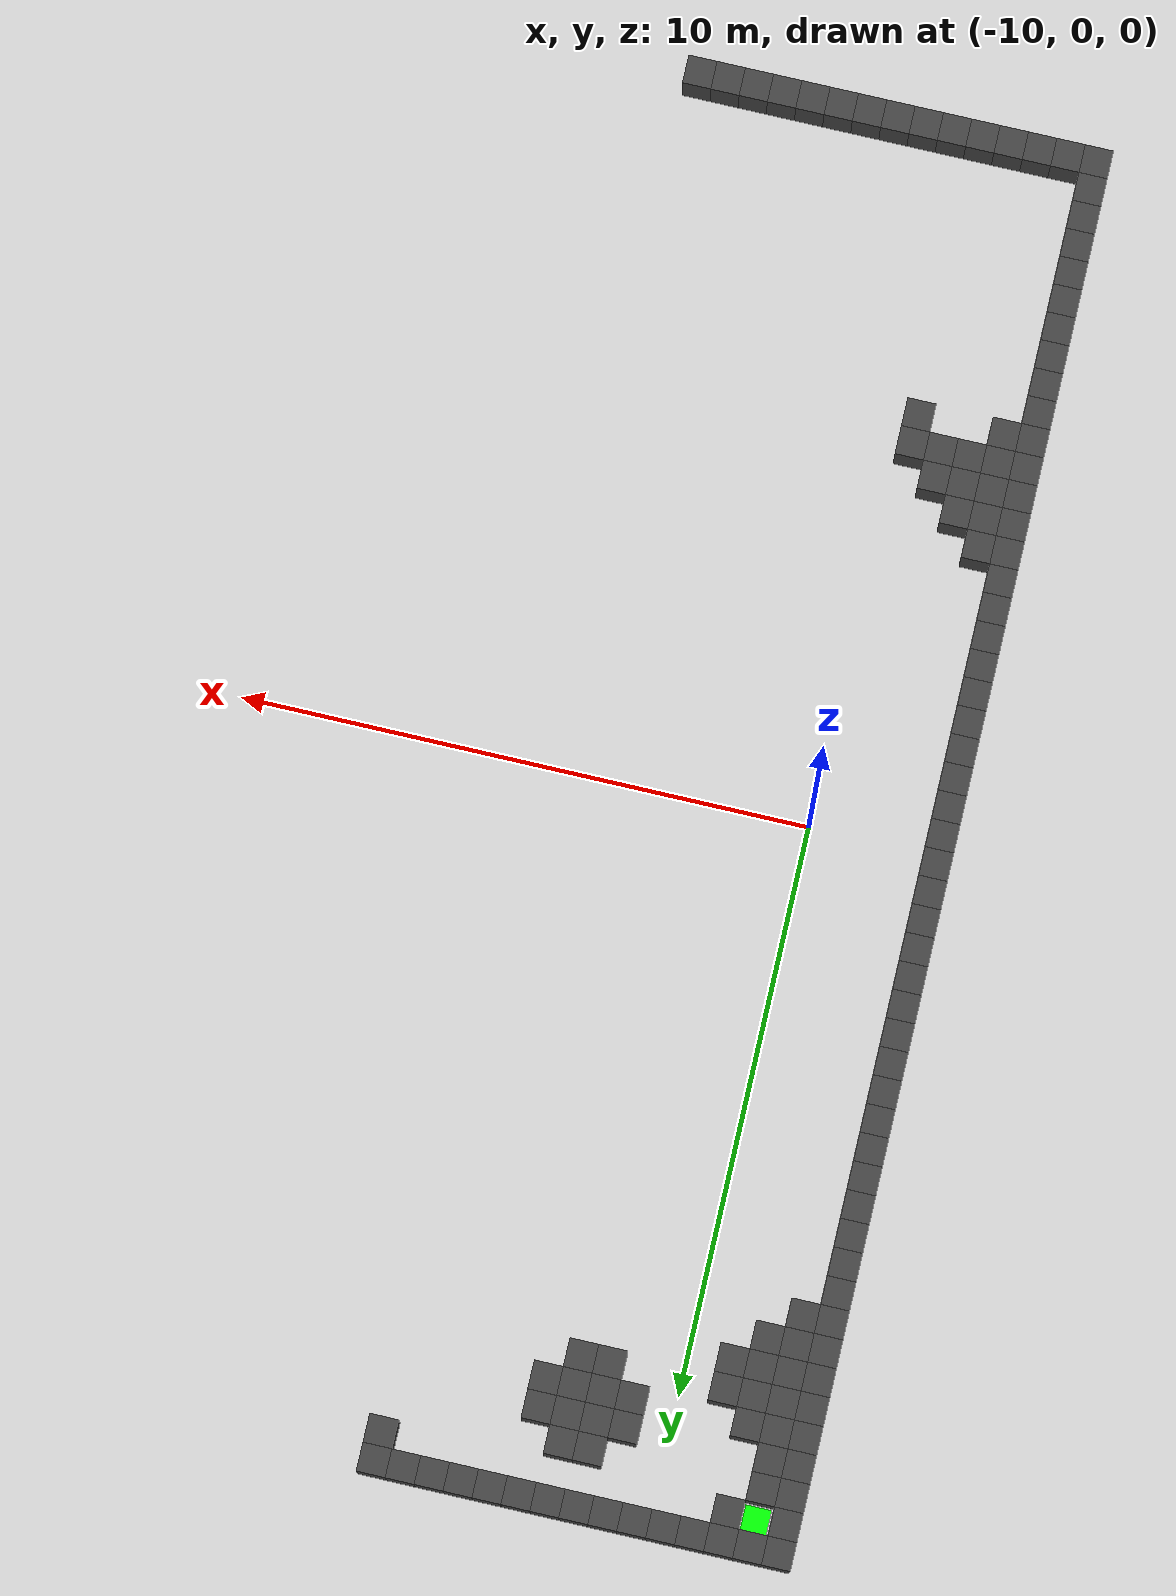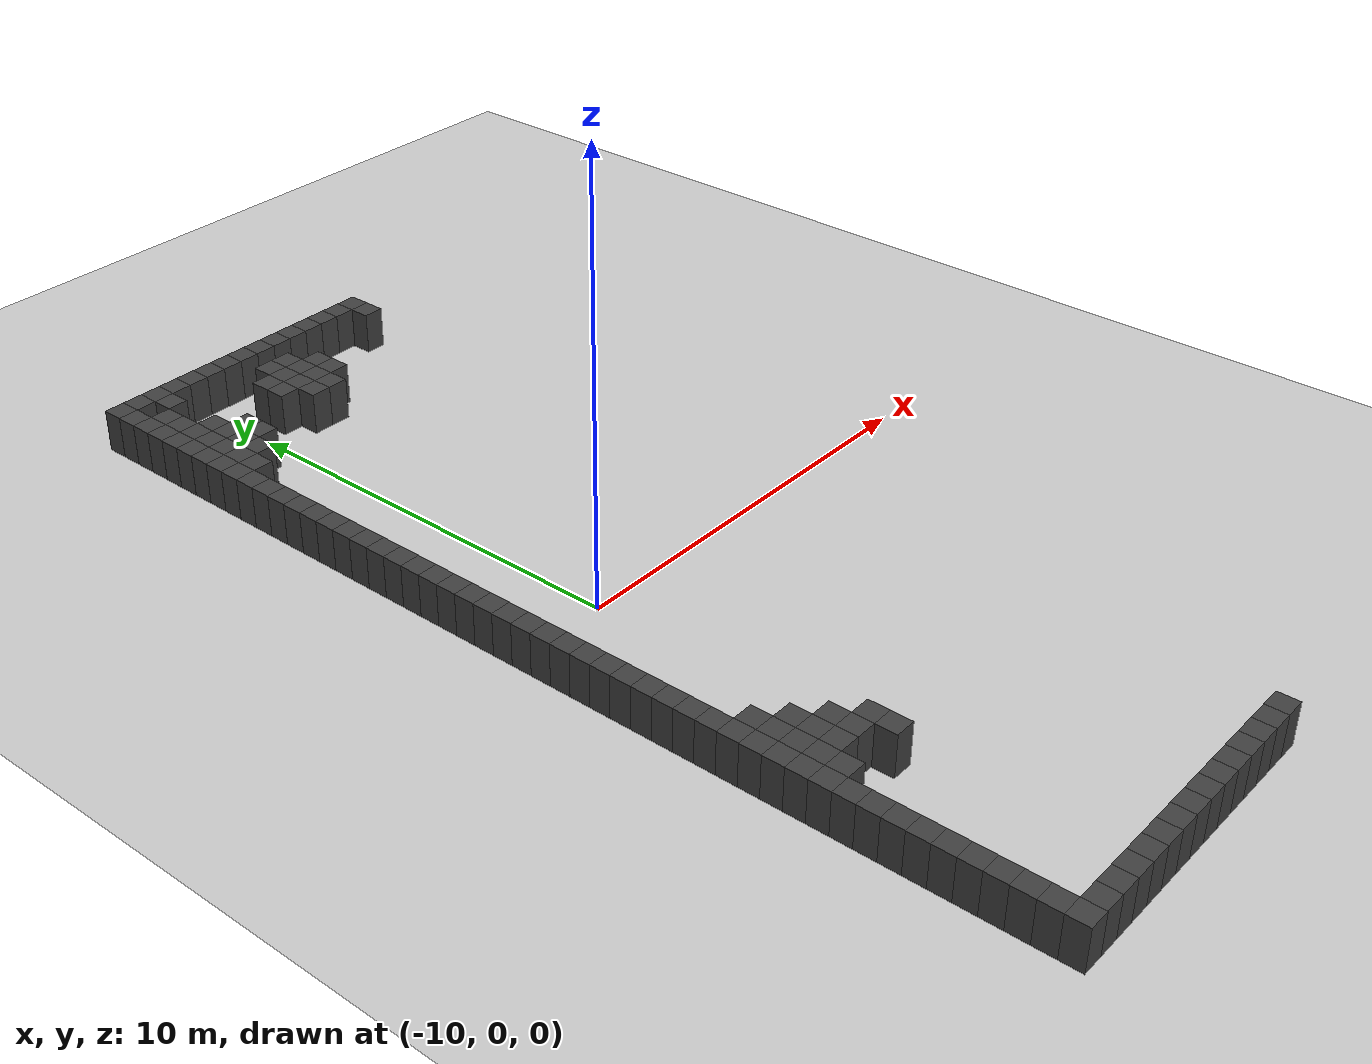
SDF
<sdf version="1.7">
 <world name="map_5837">
  <model name="ground_plane">
   <static>true</static>
   <link name="link">
    <collision name="collision">
     <geometry><plane><normal>0 0 1</normal><size>200 200</size></plane></geometry>
    </collision>
    <visual name="visual">
     <geometry><plane><normal>0 0 1</normal><size>200 200</size></plane></geometry>
     <material><ambient>0.8 0.8 0.8 1</ambient><diffuse>0.8 0.8 0.8 1</diffuse></material>
    </visual>
   </link>
  </model>
  <model name="maze_environment">
   <static>true</static>
   <link name="wall_0">
    <pose>-12.250 12.250 0.500 0 0 0</pose>
    <collision name="col"><geometry><box><size>0.5 0.5 1.0</size></box></geometry></collision>
    <visual name="vis">
     <geometry><box><size>0.5 0.5 1.0</size></box></geometry>
     <material><ambient>0.15 0.15 0.15 1</ambient><diffuse>0.25 0.25 0.25 1</diffuse></material>
    </visual>
   </link>
   <link name="wall_1">
    <pose>-11.750 12.250 0.500 0 0 0</pose>
    <collision name="col"><geometry><box><size>0.5 0.5 1.0</size></box></geometry></collision>
    <visual name="vis">
     <geometry><box><size>0.5 0.5 1.0</size></box></geometry>
     <material><ambient>0.15 0.15 0.15 1</ambient><diffuse>0.25 0.25 0.25 1</diffuse></material>
    </visual>
   </link>
   <link name="wall_2">
    <pose>-11.250 12.250 0.500 0 0 0</pose>
    <collision name="col"><geometry><box><size>0.5 0.5 1.0</size></box></geometry></collision>
    <visual name="vis">
     <geometry><box><size>0.5 0.5 1.0</size></box></geometry>
     <material><ambient>0.15 0.15 0.15 1</ambient><diffuse>0.25 0.25 0.25 1</diffuse></material>
    </visual>
   </link>
   <link name="wall_3">
    <pose>-10.750 12.250 0.500 0 0 0</pose>
    <collision name="col"><geometry><box><size>0.5 0.5 1.0</size></box></geometry></collision>
    <visual name="vis">
     <geometry><box><size>0.5 0.5 1.0</size></box></geometry>
     <material><ambient>0.15 0.15 0.15 1</ambient><diffuse>0.25 0.25 0.25 1</diffuse></material>
    </visual>
   </link>
   <link name="wall_4">
    <pose>-10.250 12.250 0.500 0 0 0</pose>
    <collision name="col"><geometry><box><size>0.5 0.5 1.0</size></box></geometry></collision>
    <visual name="vis">
     <geometry><box><size>0.5 0.5 1.0</size></box></geometry>
     <material><ambient>0.15 0.15 0.15 1</ambient><diffuse>0.25 0.25 0.25 1</diffuse></material>
    </visual>
   </link>
   <link name="wall_5">
    <pose>-9.750 12.250 0.500 0 0 0</pose>
    <collision name="col"><geometry><box><size>0.5 0.5 1.0</size></box></geometry></collision>
    <visual name="vis">
     <geometry><box><size>0.5 0.5 1.0</size></box></geometry>
     <material><ambient>0.15 0.15 0.15 1</ambient><diffuse>0.25 0.25 0.25 1</diffuse></material>
    </visual>
   </link>
   <link name="wall_6">
    <pose>-9.250 12.250 0.500 0 0 0</pose>
    <collision name="col"><geometry><box><size>0.5 0.5 1.0</size></box></geometry></collision>
    <visual name="vis">
     <geometry><box><size>0.5 0.5 1.0</size></box></geometry>
     <material><ambient>0.15 0.15 0.15 1</ambient><diffuse>0.25 0.25 0.25 1</diffuse></material>
    </visual>
   </link>
   <link name="wall_7">
    <pose>-8.750 12.250 0.500 0 0 0</pose>
    <collision name="col"><geometry><box><size>0.5 0.5 1.0</size></box></geometry></collision>
    <visual name="vis">
     <geometry><box><size>0.5 0.5 1.0</size></box></geometry>
     <material><ambient>0.15 0.15 0.15 1</ambient><diffuse>0.25 0.25 0.25 1</diffuse></material>
    </visual>
   </link>
   <link name="wall_8">
    <pose>-8.250 12.250 0.500 0 0 0</pose>
    <collision name="col"><geometry><box><size>0.5 0.5 1.0</size></box></geometry></collision>
    <visual name="vis">
     <geometry><box><size>0.5 0.5 1.0</size></box></geometry>
     <material><ambient>0.15 0.15 0.15 1</ambient><diffuse>0.25 0.25 0.25 1</diffuse></material>
    </visual>
   </link>
   <link name="wall_9">
    <pose>-7.750 12.250 0.500 0 0 0</pose>
    <collision name="col"><geometry><box><size>0.5 0.5 1.0</size></box></geometry></collision>
    <visual name="vis">
     <geometry><box><size>0.5 0.5 1.0</size></box></geometry>
     <material><ambient>0.15 0.15 0.15 1</ambient><diffuse>0.25 0.25 0.25 1</diffuse></material>
    </visual>
   </link>
   <link name="wall_10">
    <pose>-7.250 12.250 0.500 0 0 0</pose>
    <collision name="col"><geometry><box><size>0.5 0.5 1.0</size></box></geometry></collision>
    <visual name="vis">
     <geometry><box><size>0.5 0.5 1.0</size></box></geometry>
     <material><ambient>0.15 0.15 0.15 1</ambient><diffuse>0.25 0.25 0.25 1</diffuse></material>
    </visual>
   </link>
   <link name="wall_11">
    <pose>-6.750 12.250 0.500 0 0 0</pose>
    <collision name="col"><geometry><box><size>0.5 0.5 1.0</size></box></geometry></collision>
    <visual name="vis">
     <geometry><box><size>0.5 0.5 1.0</size></box></geometry>
     <material><ambient>0.15 0.15 0.15 1</ambient><diffuse>0.25 0.25 0.25 1</diffuse></material>
    </visual>
   </link>
   <link name="wall_12">
    <pose>-6.250 12.250 0.500 0 0 0</pose>
    <collision name="col"><geometry><box><size>0.5 0.5 1.0</size></box></geometry></collision>
    <visual name="vis">
     <geometry><box><size>0.5 0.5 1.0</size></box></geometry>
     <material><ambient>0.15 0.15 0.15 1</ambient><diffuse>0.25 0.25 0.25 1</diffuse></material>
    </visual>
   </link>
   <link name="wall_13">
    <pose>-5.750 12.250 0.500 0 0 0</pose>
    <collision name="col"><geometry><box><size>0.5 0.5 1.0</size></box></geometry></collision>
    <visual name="vis">
     <geometry><box><size>0.5 0.5 1.0</size></box></geometry>
     <material><ambient>0.15 0.15 0.15 1</ambient><diffuse>0.25 0.25 0.25 1</diffuse></material>
    </visual>
   </link>
   <link name="wall_14">
    <pose>-5.250 12.250 0.500 0 0 0</pose>
    <collision name="col"><geometry><box><size>0.5 0.5 1.0</size></box></geometry></collision>
    <visual name="vis">
     <geometry><box><size>0.5 0.5 1.0</size></box></geometry>
     <material><ambient>0.15 0.15 0.15 1</ambient><diffuse>0.25 0.25 0.25 1</diffuse></material>
    </visual>
   </link>
   <link name="wall_50">
    <pose>-12.250 11.750 0.500 0 0 0</pose>
    <collision name="col"><geometry><box><size>0.5 0.5 1.0</size></box></geometry></collision>
    <visual name="vis">
     <geometry><box><size>0.5 0.5 1.0</size></box></geometry>
     <material><ambient>0.15 0.15 0.15 1</ambient><diffuse>0.25 0.25 0.25 1</diffuse></material>
    </visual>
   </link>
   <link name="wall_51">
    <pose>-11.250 11.750 0.500 0 0 0</pose>
    <collision name="col"><geometry><box><size>0.5 0.5 1.0</size></box></geometry></collision>
    <visual name="vis">
     <geometry><box><size>0.5 0.5 1.0</size></box></geometry>
     <material><ambient>0.15 0.15 0.15 1</ambient><diffuse>0.25 0.25 0.25 1</diffuse></material>
    </visual>
   </link>
   <link name="wall_52">
    <pose>-5.250 11.750 0.500 0 0 0</pose>
    <collision name="col"><geometry><box><size>0.5 0.5 1.0</size></box></geometry></collision>
    <visual name="vis">
     <geometry><box><size>0.5 0.5 1.0</size></box></geometry>
     <material><ambient>0.15 0.15 0.15 1</ambient><diffuse>0.25 0.25 0.25 1</diffuse></material>
    </visual>
   </link>
   <link name="wall_76">
    <pose>-12.250 11.250 0.500 0 0 0</pose>
    <collision name="col"><geometry><box><size>0.5 0.5 1.0</size></box></geometry></collision>
    <visual name="vis">
     <geometry><box><size>0.5 0.5 1.0</size></box></geometry>
     <material><ambient>0.15 0.15 0.15 1</ambient><diffuse>0.25 0.25 0.25 1</diffuse></material>
    </visual>
   </link>
   <link name="wall_77">
    <pose>-11.750 11.250 0.500 0 0 0</pose>
    <collision name="col"><geometry><box><size>0.5 0.5 1.0</size></box></geometry></collision>
    <visual name="vis">
     <geometry><box><size>0.5 0.5 1.0</size></box></geometry>
     <material><ambient>0.15 0.15 0.15 1</ambient><diffuse>0.25 0.25 0.25 1</diffuse></material>
    </visual>
   </link>
   <link name="wall_78">
    <pose>-8.750 11.250 0.500 0 0 0</pose>
    <collision name="col"><geometry><box><size>0.5 0.5 1.0</size></box></geometry></collision>
    <visual name="vis">
     <geometry><box><size>0.5 0.5 1.0</size></box></geometry>
     <material><ambient>0.15 0.15 0.15 1</ambient><diffuse>0.25 0.25 0.25 1</diffuse></material>
    </visual>
   </link>
   <link name="wall_79">
    <pose>-8.250 11.250 0.500 0 0 0</pose>
    <collision name="col"><geometry><box><size>0.5 0.5 1.0</size></box></geometry></collision>
    <visual name="vis">
     <geometry><box><size>0.5 0.5 1.0</size></box></geometry>
     <material><ambient>0.15 0.15 0.15 1</ambient><diffuse>0.25 0.25 0.25 1</diffuse></material>
    </visual>
   </link>
   <link name="wall_91">
    <pose>-12.250 10.750 0.500 0 0 0</pose>
    <collision name="col"><geometry><box><size>0.5 0.5 1.0</size></box></geometry></collision>
    <visual name="vis">
     <geometry><box><size>0.5 0.5 1.0</size></box></geometry>
     <material><ambient>0.15 0.15 0.15 1</ambient><diffuse>0.25 0.25 0.25 1</diffuse></material>
    </visual>
   </link>
   <link name="wall_92">
    <pose>-11.750 10.750 0.500 0 0 0</pose>
    <collision name="col"><geometry><box><size>0.5 0.5 1.0</size></box></geometry></collision>
    <visual name="vis">
     <geometry><box><size>0.5 0.5 1.0</size></box></geometry>
     <material><ambient>0.15 0.15 0.15 1</ambient><diffuse>0.25 0.25 0.25 1</diffuse></material>
    </visual>
   </link>
   <link name="wall_93">
    <pose>-9.250 10.750 0.500 0 0 0</pose>
    <collision name="col"><geometry><box><size>0.5 0.5 1.0</size></box></geometry></collision>
    <visual name="vis">
     <geometry><box><size>0.5 0.5 1.0</size></box></geometry>
     <material><ambient>0.15 0.15 0.15 1</ambient><diffuse>0.25 0.25 0.25 1</diffuse></material>
    </visual>
   </link>
   <link name="wall_94">
    <pose>-8.750 10.750 0.500 0 0 0</pose>
    <collision name="col"><geometry><box><size>0.5 0.5 1.0</size></box></geometry></collision>
    <visual name="vis">
     <geometry><box><size>0.5 0.5 1.0</size></box></geometry>
     <material><ambient>0.15 0.15 0.15 1</ambient><diffuse>0.25 0.25 0.25 1</diffuse></material>
    </visual>
   </link>
   <link name="wall_95">
    <pose>-8.250 10.750 0.500 0 0 0</pose>
    <collision name="col"><geometry><box><size>0.5 0.5 1.0</size></box></geometry></collision>
    <visual name="vis">
     <geometry><box><size>0.5 0.5 1.0</size></box></geometry>
     <material><ambient>0.15 0.15 0.15 1</ambient><diffuse>0.25 0.25 0.25 1</diffuse></material>
    </visual>
   </link>
   <link name="wall_96">
    <pose>-7.750 10.750 0.500 0 0 0</pose>
    <collision name="col"><geometry><box><size>0.5 0.5 1.0</size></box></geometry></collision>
    <visual name="vis">
     <geometry><box><size>0.5 0.5 1.0</size></box></geometry>
     <material><ambient>0.15 0.15 0.15 1</ambient><diffuse>0.25 0.25 0.25 1</diffuse></material>
    </visual>
   </link>
   <link name="wall_102">
    <pose>-12.250 10.250 0.500 0 0 0</pose>
    <collision name="col"><geometry><box><size>0.5 0.5 1.0</size></box></geometry></collision>
    <visual name="vis">
     <geometry><box><size>0.5 0.5 1.0</size></box></geometry>
     <material><ambient>0.15 0.15 0.15 1</ambient><diffuse>0.25 0.25 0.25 1</diffuse></material>
    </visual>
   </link>
   <link name="wall_103">
    <pose>-11.750 10.250 0.500 0 0 0</pose>
    <collision name="col"><geometry><box><size>0.5 0.5 1.0</size></box></geometry></collision>
    <visual name="vis">
     <geometry><box><size>0.5 0.5 1.0</size></box></geometry>
     <material><ambient>0.15 0.15 0.15 1</ambient><diffuse>0.25 0.25 0.25 1</diffuse></material>
    </visual>
   </link>
   <link name="wall_104">
    <pose>-11.250 10.250 0.500 0 0 0</pose>
    <collision name="col"><geometry><box><size>0.5 0.5 1.0</size></box></geometry></collision>
    <visual name="vis">
     <geometry><box><size>0.5 0.5 1.0</size></box></geometry>
     <material><ambient>0.15 0.15 0.15 1</ambient><diffuse>0.25 0.25 0.25 1</diffuse></material>
    </visual>
   </link>
   <link name="wall_105">
    <pose>-9.250 10.250 0.500 0 0 0</pose>
    <collision name="col"><geometry><box><size>0.5 0.5 1.0</size></box></geometry></collision>
    <visual name="vis">
     <geometry><box><size>0.5 0.5 1.0</size></box></geometry>
     <material><ambient>0.15 0.15 0.15 1</ambient><diffuse>0.25 0.25 0.25 1</diffuse></material>
    </visual>
   </link>
   <link name="wall_106">
    <pose>-8.750 10.250 0.500 0 0 0</pose>
    <collision name="col"><geometry><box><size>0.5 0.5 1.0</size></box></geometry></collision>
    <visual name="vis">
     <geometry><box><size>0.5 0.5 1.0</size></box></geometry>
     <material><ambient>0.15 0.15 0.15 1</ambient><diffuse>0.25 0.25 0.25 1</diffuse></material>
    </visual>
   </link>
   <link name="wall_107">
    <pose>-8.250 10.250 0.500 0 0 0</pose>
    <collision name="col"><geometry><box><size>0.5 0.5 1.0</size></box></geometry></collision>
    <visual name="vis">
     <geometry><box><size>0.5 0.5 1.0</size></box></geometry>
     <material><ambient>0.15 0.15 0.15 1</ambient><diffuse>0.25 0.25 0.25 1</diffuse></material>
    </visual>
   </link>
   <link name="wall_108">
    <pose>-7.750 10.250 0.500 0 0 0</pose>
    <collision name="col"><geometry><box><size>0.5 0.5 1.0</size></box></geometry></collision>
    <visual name="vis">
     <geometry><box><size>0.5 0.5 1.0</size></box></geometry>
     <material><ambient>0.15 0.15 0.15 1</ambient><diffuse>0.25 0.25 0.25 1</diffuse></material>
    </visual>
   </link>
   <link name="wall_113">
    <pose>-12.250 9.750 0.500 0 0 0</pose>
    <collision name="col"><geometry><box><size>0.5 0.5 1.0</size></box></geometry></collision>
    <visual name="vis">
     <geometry><box><size>0.5 0.5 1.0</size></box></geometry>
     <material><ambient>0.15 0.15 0.15 1</ambient><diffuse>0.25 0.25 0.25 1</diffuse></material>
    </visual>
   </link>
   <link name="wall_114">
    <pose>-11.750 9.750 0.500 0 0 0</pose>
    <collision name="col"><geometry><box><size>0.5 0.5 1.0</size></box></geometry></collision>
    <visual name="vis">
     <geometry><box><size>0.5 0.5 1.0</size></box></geometry>
     <material><ambient>0.15 0.15 0.15 1</ambient><diffuse>0.25 0.25 0.25 1</diffuse></material>
    </visual>
   </link>
   <link name="wall_115">
    <pose>-11.250 9.750 0.500 0 0 0</pose>
    <collision name="col"><geometry><box><size>0.5 0.5 1.0</size></box></geometry></collision>
    <visual name="vis">
     <geometry><box><size>0.5 0.5 1.0</size></box></geometry>
     <material><ambient>0.15 0.15 0.15 1</ambient><diffuse>0.25 0.25 0.25 1</diffuse></material>
    </visual>
   </link>
   <link name="wall_116">
    <pose>-10.750 9.750 0.500 0 0 0</pose>
    <collision name="col"><geometry><box><size>0.5 0.5 1.0</size></box></geometry></collision>
    <visual name="vis">
     <geometry><box><size>0.5 0.5 1.0</size></box></geometry>
     <material><ambient>0.15 0.15 0.15 1</ambient><diffuse>0.25 0.25 0.25 1</diffuse></material>
    </visual>
   </link>
   <link name="wall_117">
    <pose>-8.750 9.750 0.500 0 0 0</pose>
    <collision name="col"><geometry><box><size>0.5 0.5 1.0</size></box></geometry></collision>
    <visual name="vis">
     <geometry><box><size>0.5 0.5 1.0</size></box></geometry>
     <material><ambient>0.15 0.15 0.15 1</ambient><diffuse>0.25 0.25 0.25 1</diffuse></material>
    </visual>
   </link>
   <link name="wall_118">
    <pose>-8.250 9.750 0.500 0 0 0</pose>
    <collision name="col"><geometry><box><size>0.5 0.5 1.0</size></box></geometry></collision>
    <visual name="vis">
     <geometry><box><size>0.5 0.5 1.0</size></box></geometry>
     <material><ambient>0.15 0.15 0.15 1</ambient><diffuse>0.25 0.25 0.25 1</diffuse></material>
    </visual>
   </link>
   <link name="wall_124">
    <pose>-12.250 9.250 0.500 0 0 0</pose>
    <collision name="col"><geometry><box><size>0.5 0.5 1.0</size></box></geometry></collision>
    <visual name="vis">
     <geometry><box><size>0.5 0.5 1.0</size></box></geometry>
     <material><ambient>0.15 0.15 0.15 1</ambient><diffuse>0.25 0.25 0.25 1</diffuse></material>
    </visual>
   </link>
   <link name="wall_125">
    <pose>-11.750 9.250 0.500 0 0 0</pose>
    <collision name="col"><geometry><box><size>0.5 0.5 1.0</size></box></geometry></collision>
    <visual name="vis">
     <geometry><box><size>0.5 0.5 1.0</size></box></geometry>
     <material><ambient>0.15 0.15 0.15 1</ambient><diffuse>0.25 0.25 0.25 1</diffuse></material>
    </visual>
   </link>
   <link name="wall_126">
    <pose>-11.250 9.250 0.500 0 0 0</pose>
    <collision name="col"><geometry><box><size>0.5 0.5 1.0</size></box></geometry></collision>
    <visual name="vis">
     <geometry><box><size>0.5 0.5 1.0</size></box></geometry>
     <material><ambient>0.15 0.15 0.15 1</ambient><diffuse>0.25 0.25 0.25 1</diffuse></material>
    </visual>
   </link>
   <link name="wall_127">
    <pose>-10.750 9.250 0.500 0 0 0</pose>
    <collision name="col"><geometry><box><size>0.5 0.5 1.0</size></box></geometry></collision>
    <visual name="vis">
     <geometry><box><size>0.5 0.5 1.0</size></box></geometry>
     <material><ambient>0.15 0.15 0.15 1</ambient><diffuse>0.25 0.25 0.25 1</diffuse></material>
    </visual>
   </link>
   <link name="wall_138">
    <pose>-12.250 8.750 0.500 0 0 0</pose>
    <collision name="col"><geometry><box><size>0.5 0.5 1.0</size></box></geometry></collision>
    <visual name="vis">
     <geometry><box><size>0.5 0.5 1.0</size></box></geometry>
     <material><ambient>0.15 0.15 0.15 1</ambient><diffuse>0.25 0.25 0.25 1</diffuse></material>
    </visual>
   </link>
   <link name="wall_139">
    <pose>-11.750 8.750 0.500 0 0 0</pose>
    <collision name="col"><geometry><box><size>0.5 0.5 1.0</size></box></geometry></collision>
    <visual name="vis">
     <geometry><box><size>0.5 0.5 1.0</size></box></geometry>
     <material><ambient>0.15 0.15 0.15 1</ambient><diffuse>0.25 0.25 0.25 1</diffuse></material>
    </visual>
   </link>
   <link name="wall_140">
    <pose>-11.250 8.750 0.500 0 0 0</pose>
    <collision name="col"><geometry><box><size>0.5 0.5 1.0</size></box></geometry></collision>
    <visual name="vis">
     <geometry><box><size>0.5 0.5 1.0</size></box></geometry>
     <material><ambient>0.15 0.15 0.15 1</ambient><diffuse>0.25 0.25 0.25 1</diffuse></material>
    </visual>
   </link>
   <link name="wall_153">
    <pose>-12.250 8.250 0.500 0 0 0</pose>
    <collision name="col"><geometry><box><size>0.5 0.5 1.0</size></box></geometry></collision>
    <visual name="vis">
     <geometry><box><size>0.5 0.5 1.0</size></box></geometry>
     <material><ambient>0.15 0.15 0.15 1</ambient><diffuse>0.25 0.25 0.25 1</diffuse></material>
    </visual>
   </link>
   <link name="wall_154">
    <pose>-11.750 8.250 0.500 0 0 0</pose>
    <collision name="col"><geometry><box><size>0.5 0.5 1.0</size></box></geometry></collision>
    <visual name="vis">
     <geometry><box><size>0.5 0.5 1.0</size></box></geometry>
     <material><ambient>0.15 0.15 0.15 1</ambient><diffuse>0.25 0.25 0.25 1</diffuse></material>
    </visual>
   </link>
   <link name="wall_168">
    <pose>-12.250 7.750 0.500 0 0 0</pose>
    <collision name="col"><geometry><box><size>0.5 0.5 1.0</size></box></geometry></collision>
    <visual name="vis">
     <geometry><box><size>0.5 0.5 1.0</size></box></geometry>
     <material><ambient>0.15 0.15 0.15 1</ambient><diffuse>0.25 0.25 0.25 1</diffuse></material>
    </visual>
   </link>
   <link name="wall_176">
    <pose>-12.250 7.250 0.500 0 0 0</pose>
    <collision name="col"><geometry><box><size>0.5 0.5 1.0</size></box></geometry></collision>
    <visual name="vis">
     <geometry><box><size>0.5 0.5 1.0</size></box></geometry>
     <material><ambient>0.15 0.15 0.15 1</ambient><diffuse>0.25 0.25 0.25 1</diffuse></material>
    </visual>
   </link>
   <link name="wall_180">
    <pose>-12.250 6.750 0.500 0 0 0</pose>
    <collision name="col"><geometry><box><size>0.5 0.5 1.0</size></box></geometry></collision>
    <visual name="vis">
     <geometry><box><size>0.5 0.5 1.0</size></box></geometry>
     <material><ambient>0.15 0.15 0.15 1</ambient><diffuse>0.25 0.25 0.25 1</diffuse></material>
    </visual>
   </link>
   <link name="wall_182">
    <pose>-12.250 6.250 0.500 0 0 0</pose>
    <collision name="col"><geometry><box><size>0.5 0.5 1.0</size></box></geometry></collision>
    <visual name="vis">
     <geometry><box><size>0.5 0.5 1.0</size></box></geometry>
     <material><ambient>0.15 0.15 0.15 1</ambient><diffuse>0.25 0.25 0.25 1</diffuse></material>
    </visual>
   </link>
   <link name="wall_185">
    <pose>-12.250 5.750 0.500 0 0 0</pose>
    <collision name="col"><geometry><box><size>0.5 0.5 1.0</size></box></geometry></collision>
    <visual name="vis">
     <geometry><box><size>0.5 0.5 1.0</size></box></geometry>
     <material><ambient>0.15 0.15 0.15 1</ambient><diffuse>0.25 0.25 0.25 1</diffuse></material>
    </visual>
   </link>
   <link name="wall_189">
    <pose>-12.250 5.250 0.500 0 0 0</pose>
    <collision name="col"><geometry><box><size>0.5 0.5 1.0</size></box></geometry></collision>
    <visual name="vis">
     <geometry><box><size>0.5 0.5 1.0</size></box></geometry>
     <material><ambient>0.15 0.15 0.15 1</ambient><diffuse>0.25 0.25 0.25 1</diffuse></material>
    </visual>
   </link>
   <link name="wall_194">
    <pose>-12.250 4.750 0.500 0 0 0</pose>
    <collision name="col"><geometry><box><size>0.5 0.5 1.0</size></box></geometry></collision>
    <visual name="vis">
     <geometry><box><size>0.5 0.5 1.0</size></box></geometry>
     <material><ambient>0.15 0.15 0.15 1</ambient><diffuse>0.25 0.25 0.25 1</diffuse></material>
    </visual>
   </link>
   <link name="wall_198">
    <pose>-12.250 4.250 0.500 0 0 0</pose>
    <collision name="col"><geometry><box><size>0.5 0.5 1.0</size></box></geometry></collision>
    <visual name="vis">
     <geometry><box><size>0.5 0.5 1.0</size></box></geometry>
     <material><ambient>0.15 0.15 0.15 1</ambient><diffuse>0.25 0.25 0.25 1</diffuse></material>
    </visual>
   </link>
   <link name="wall_200">
    <pose>-12.250 3.750 0.500 0 0 0</pose>
    <collision name="col"><geometry><box><size>0.5 0.5 1.0</size></box></geometry></collision>
    <visual name="vis">
     <geometry><box><size>0.5 0.5 1.0</size></box></geometry>
     <material><ambient>0.15 0.15 0.15 1</ambient><diffuse>0.25 0.25 0.25 1</diffuse></material>
    </visual>
   </link>
   <link name="wall_202">
    <pose>-12.250 3.250 0.500 0 0 0</pose>
    <collision name="col"><geometry><box><size>0.5 0.5 1.0</size></box></geometry></collision>
    <visual name="vis">
     <geometry><box><size>0.5 0.5 1.0</size></box></geometry>
     <material><ambient>0.15 0.15 0.15 1</ambient><diffuse>0.25 0.25 0.25 1</diffuse></material>
    </visual>
   </link>
   <link name="wall_204">
    <pose>-12.250 2.750 0.500 0 0 0</pose>
    <collision name="col"><geometry><box><size>0.5 0.5 1.0</size></box></geometry></collision>
    <visual name="vis">
     <geometry><box><size>0.5 0.5 1.0</size></box></geometry>
     <material><ambient>0.15 0.15 0.15 1</ambient><diffuse>0.25 0.25 0.25 1</diffuse></material>
    </visual>
   </link>
   <link name="wall_206">
    <pose>-12.250 2.250 0.500 0 0 0</pose>
    <collision name="col"><geometry><box><size>0.5 0.5 1.0</size></box></geometry></collision>
    <visual name="vis">
     <geometry><box><size>0.5 0.5 1.0</size></box></geometry>
     <material><ambient>0.15 0.15 0.15 1</ambient><diffuse>0.25 0.25 0.25 1</diffuse></material>
    </visual>
   </link>
   <link name="wall_208">
    <pose>-12.250 1.750 0.500 0 0 0</pose>
    <collision name="col"><geometry><box><size>0.5 0.5 1.0</size></box></geometry></collision>
    <visual name="vis">
     <geometry><box><size>0.5 0.5 1.0</size></box></geometry>
     <material><ambient>0.15 0.15 0.15 1</ambient><diffuse>0.25 0.25 0.25 1</diffuse></material>
    </visual>
   </link>
   <link name="wall_210">
    <pose>-12.250 1.250 0.500 0 0 0</pose>
    <collision name="col"><geometry><box><size>0.5 0.5 1.0</size></box></geometry></collision>
    <visual name="vis">
     <geometry><box><size>0.5 0.5 1.0</size></box></geometry>
     <material><ambient>0.15 0.15 0.15 1</ambient><diffuse>0.25 0.25 0.25 1</diffuse></material>
    </visual>
   </link>
   <link name="wall_212">
    <pose>-12.250 0.750 0.500 0 0 0</pose>
    <collision name="col"><geometry><box><size>0.5 0.5 1.0</size></box></geometry></collision>
    <visual name="vis">
     <geometry><box><size>0.5 0.5 1.0</size></box></geometry>
     <material><ambient>0.15 0.15 0.15 1</ambient><diffuse>0.25 0.25 0.25 1</diffuse></material>
    </visual>
   </link>
   <link name="wall_215">
    <pose>-12.250 0.250 0.500 0 0 0</pose>
    <collision name="col"><geometry><box><size>0.5 0.5 1.0</size></box></geometry></collision>
    <visual name="vis">
     <geometry><box><size>0.5 0.5 1.0</size></box></geometry>
     <material><ambient>0.15 0.15 0.15 1</ambient><diffuse>0.25 0.25 0.25 1</diffuse></material>
    </visual>
   </link>
   <link name="wall_220">
    <pose>-12.250 -0.250 0.500 0 0 0</pose>
    <collision name="col"><geometry><box><size>0.5 0.5 1.0</size></box></geometry></collision>
    <visual name="vis">
     <geometry><box><size>0.5 0.5 1.0</size></box></geometry>
     <material><ambient>0.15 0.15 0.15 1</ambient><diffuse>0.25 0.25 0.25 1</diffuse></material>
    </visual>
   </link>
   <link name="wall_223">
    <pose>-12.250 -0.750 0.500 0 0 0</pose>
    <collision name="col"><geometry><box><size>0.5 0.5 1.0</size></box></geometry></collision>
    <visual name="vis">
     <geometry><box><size>0.5 0.5 1.0</size></box></geometry>
     <material><ambient>0.15 0.15 0.15 1</ambient><diffuse>0.25 0.25 0.25 1</diffuse></material>
    </visual>
   </link>
   <link name="wall_225">
    <pose>-12.250 -1.250 0.500 0 0 0</pose>
    <collision name="col"><geometry><box><size>0.5 0.5 1.0</size></box></geometry></collision>
    <visual name="vis">
     <geometry><box><size>0.5 0.5 1.0</size></box></geometry>
     <material><ambient>0.15 0.15 0.15 1</ambient><diffuse>0.25 0.25 0.25 1</diffuse></material>
    </visual>
   </link>
   <link name="wall_227">
    <pose>-12.250 -1.750 0.500 0 0 0</pose>
    <collision name="col"><geometry><box><size>0.5 0.5 1.0</size></box></geometry></collision>
    <visual name="vis">
     <geometry><box><size>0.5 0.5 1.0</size></box></geometry>
     <material><ambient>0.15 0.15 0.15 1</ambient><diffuse>0.25 0.25 0.25 1</diffuse></material>
    </visual>
   </link>
   <link name="wall_230">
    <pose>-12.250 -2.250 0.500 0 0 0</pose>
    <collision name="col"><geometry><box><size>0.5 0.5 1.0</size></box></geometry></collision>
    <visual name="vis">
     <geometry><box><size>0.5 0.5 1.0</size></box></geometry>
     <material><ambient>0.15 0.15 0.15 1</ambient><diffuse>0.25 0.25 0.25 1</diffuse></material>
    </visual>
   </link>
   <link name="wall_232">
    <pose>-12.250 -2.750 0.500 0 0 0</pose>
    <collision name="col"><geometry><box><size>0.5 0.5 1.0</size></box></geometry></collision>
    <visual name="vis">
     <geometry><box><size>0.5 0.5 1.0</size></box></geometry>
     <material><ambient>0.15 0.15 0.15 1</ambient><diffuse>0.25 0.25 0.25 1</diffuse></material>
    </visual>
   </link>
   <link name="wall_234">
    <pose>-12.250 -3.250 0.500 0 0 0</pose>
    <collision name="col"><geometry><box><size>0.5 0.5 1.0</size></box></geometry></collision>
    <visual name="vis">
     <geometry><box><size>0.5 0.5 1.0</size></box></geometry>
     <material><ambient>0.15 0.15 0.15 1</ambient><diffuse>0.25 0.25 0.25 1</diffuse></material>
    </visual>
   </link>
   <link name="wall_238">
    <pose>-12.250 -3.750 0.500 0 0 0</pose>
    <collision name="col"><geometry><box><size>0.5 0.5 1.0</size></box></geometry></collision>
    <visual name="vis">
     <geometry><box><size>0.5 0.5 1.0</size></box></geometry>
     <material><ambient>0.15 0.15 0.15 1</ambient><diffuse>0.25 0.25 0.25 1</diffuse></material>
    </visual>
   </link>
   <link name="wall_243">
    <pose>-12.250 -4.250 0.500 0 0 0</pose>
    <collision name="col"><geometry><box><size>0.5 0.5 1.0</size></box></geometry></collision>
    <visual name="vis">
     <geometry><box><size>0.5 0.5 1.0</size></box></geometry>
     <material><ambient>0.15 0.15 0.15 1</ambient><diffuse>0.25 0.25 0.25 1</diffuse></material>
    </visual>
   </link>
   <link name="wall_248">
    <pose>-12.250 -4.750 0.500 0 0 0</pose>
    <collision name="col"><geometry><box><size>0.5 0.5 1.0</size></box></geometry></collision>
    <visual name="vis">
     <geometry><box><size>0.5 0.5 1.0</size></box></geometry>
     <material><ambient>0.15 0.15 0.15 1</ambient><diffuse>0.25 0.25 0.25 1</diffuse></material>
    </visual>
   </link>
   <link name="wall_253">
    <pose>-12.250 -5.250 0.500 0 0 0</pose>
    <collision name="col"><geometry><box><size>0.5 0.5 1.0</size></box></geometry></collision>
    <visual name="vis">
     <geometry><box><size>0.5 0.5 1.0</size></box></geometry>
     <material><ambient>0.15 0.15 0.15 1</ambient><diffuse>0.25 0.25 0.25 1</diffuse></material>
    </visual>
   </link>
   <link name="wall_254">
    <pose>-11.750 -5.250 0.500 0 0 0</pose>
    <collision name="col"><geometry><box><size>0.5 0.5 1.0</size></box></geometry></collision>
    <visual name="vis">
     <geometry><box><size>0.5 0.5 1.0</size></box></geometry>
     <material><ambient>0.15 0.15 0.15 1</ambient><diffuse>0.25 0.25 0.25 1</diffuse></material>
    </visual>
   </link>
   <link name="wall_257">
    <pose>-12.250 -5.750 0.500 0 0 0</pose>
    <collision name="col"><geometry><box><size>0.5 0.5 1.0</size></box></geometry></collision>
    <visual name="vis">
     <geometry><box><size>0.5 0.5 1.0</size></box></geometry>
     <material><ambient>0.15 0.15 0.15 1</ambient><diffuse>0.25 0.25 0.25 1</diffuse></material>
    </visual>
   </link>
   <link name="wall_258">
    <pose>-11.750 -5.750 0.500 0 0 0</pose>
    <collision name="col"><geometry><box><size>0.5 0.5 1.0</size></box></geometry></collision>
    <visual name="vis">
     <geometry><box><size>0.5 0.5 1.0</size></box></geometry>
     <material><ambient>0.15 0.15 0.15 1</ambient><diffuse>0.25 0.25 0.25 1</diffuse></material>
    </visual>
   </link>
   <link name="wall_259">
    <pose>-11.250 -5.750 0.500 0 0 0</pose>
    <collision name="col"><geometry><box><size>0.5 0.5 1.0</size></box></geometry></collision>
    <visual name="vis">
     <geometry><box><size>0.5 0.5 1.0</size></box></geometry>
     <material><ambient>0.15 0.15 0.15 1</ambient><diffuse>0.25 0.25 0.25 1</diffuse></material>
    </visual>
   </link>
   <link name="wall_261">
    <pose>-12.250 -6.250 0.500 0 0 0</pose>
    <collision name="col"><geometry><box><size>0.5 0.5 1.0</size></box></geometry></collision>
    <visual name="vis">
     <geometry><box><size>0.5 0.5 1.0</size></box></geometry>
     <material><ambient>0.15 0.15 0.15 1</ambient><diffuse>0.25 0.25 0.25 1</diffuse></material>
    </visual>
   </link>
   <link name="wall_262">
    <pose>-11.750 -6.250 0.500 0 0 0</pose>
    <collision name="col"><geometry><box><size>0.5 0.5 1.0</size></box></geometry></collision>
    <visual name="vis">
     <geometry><box><size>0.5 0.5 1.0</size></box></geometry>
     <material><ambient>0.15 0.15 0.15 1</ambient><diffuse>0.25 0.25 0.25 1</diffuse></material>
    </visual>
   </link>
   <link name="wall_263">
    <pose>-11.250 -6.250 0.500 0 0 0</pose>
    <collision name="col"><geometry><box><size>0.5 0.5 1.0</size></box></geometry></collision>
    <visual name="vis">
     <geometry><box><size>0.5 0.5 1.0</size></box></geometry>
     <material><ambient>0.15 0.15 0.15 1</ambient><diffuse>0.25 0.25 0.25 1</diffuse></material>
    </visual>
   </link>
   <link name="wall_264">
    <pose>-10.750 -6.250 0.500 0 0 0</pose>
    <collision name="col"><geometry><box><size>0.5 0.5 1.0</size></box></geometry></collision>
    <visual name="vis">
     <geometry><box><size>0.5 0.5 1.0</size></box></geometry>
     <material><ambient>0.15 0.15 0.15 1</ambient><diffuse>0.25 0.25 0.25 1</diffuse></material>
    </visual>
   </link>
   <link name="wall_266">
    <pose>-12.250 -6.750 0.500 0 0 0</pose>
    <collision name="col"><geometry><box><size>0.5 0.5 1.0</size></box></geometry></collision>
    <visual name="vis">
     <geometry><box><size>0.5 0.5 1.0</size></box></geometry>
     <material><ambient>0.15 0.15 0.15 1</ambient><diffuse>0.25 0.25 0.25 1</diffuse></material>
    </visual>
   </link>
   <link name="wall_267">
    <pose>-11.750 -6.750 0.500 0 0 0</pose>
    <collision name="col"><geometry><box><size>0.5 0.5 1.0</size></box></geometry></collision>
    <visual name="vis">
     <geometry><box><size>0.5 0.5 1.0</size></box></geometry>
     <material><ambient>0.15 0.15 0.15 1</ambient><diffuse>0.25 0.25 0.25 1</diffuse></material>
    </visual>
   </link>
   <link name="wall_268">
    <pose>-11.250 -6.750 0.500 0 0 0</pose>
    <collision name="col"><geometry><box><size>0.5 0.5 1.0</size></box></geometry></collision>
    <visual name="vis">
     <geometry><box><size>0.5 0.5 1.0</size></box></geometry>
     <material><ambient>0.15 0.15 0.15 1</ambient><diffuse>0.25 0.25 0.25 1</diffuse></material>
    </visual>
   </link>
   <link name="wall_269">
    <pose>-10.750 -6.750 0.500 0 0 0</pose>
    <collision name="col"><geometry><box><size>0.5 0.5 1.0</size></box></geometry></collision>
    <visual name="vis">
     <geometry><box><size>0.5 0.5 1.0</size></box></geometry>
     <material><ambient>0.15 0.15 0.15 1</ambient><diffuse>0.25 0.25 0.25 1</diffuse></material>
    </visual>
   </link>
   <link name="wall_270">
    <pose>-10.250 -6.750 0.500 0 0 0</pose>
    <collision name="col"><geometry><box><size>0.5 0.5 1.0</size></box></geometry></collision>
    <visual name="vis">
     <geometry><box><size>0.5 0.5 1.0</size></box></geometry>
     <material><ambient>0.15 0.15 0.15 1</ambient><diffuse>0.25 0.25 0.25 1</diffuse></material>
    </visual>
   </link>
   <link name="wall_272">
    <pose>-12.250 -7.250 0.500 0 0 0</pose>
    <collision name="col"><geometry><box><size>0.5 0.5 1.0</size></box></geometry></collision>
    <visual name="vis">
     <geometry><box><size>0.5 0.5 1.0</size></box></geometry>
     <material><ambient>0.15 0.15 0.15 1</ambient><diffuse>0.25 0.25 0.25 1</diffuse></material>
    </visual>
   </link>
   <link name="wall_273">
    <pose>-11.750 -7.250 0.500 0 0 0</pose>
    <collision name="col"><geometry><box><size>0.5 0.5 1.0</size></box></geometry></collision>
    <visual name="vis">
     <geometry><box><size>0.5 0.5 1.0</size></box></geometry>
     <material><ambient>0.15 0.15 0.15 1</ambient><diffuse>0.25 0.25 0.25 1</diffuse></material>
    </visual>
   </link>
   <link name="wall_274">
    <pose>-10.250 -7.250 0.500 0 0 0</pose>
    <collision name="col"><geometry><box><size>0.5 0.5 1.0</size></box></geometry></collision>
    <visual name="vis">
     <geometry><box><size>0.5 0.5 1.0</size></box></geometry>
     <material><ambient>0.15 0.15 0.15 1</ambient><diffuse>0.25 0.25 0.25 1</diffuse></material>
    </visual>
   </link>
   <link name="wall_276">
    <pose>-12.250 -7.750 0.500 0 0 0</pose>
    <collision name="col"><geometry><box><size>0.5 0.5 1.0</size></box></geometry></collision>
    <visual name="vis">
     <geometry><box><size>0.5 0.5 1.0</size></box></geometry>
     <material><ambient>0.15 0.15 0.15 1</ambient><diffuse>0.25 0.25 0.25 1</diffuse></material>
    </visual>
   </link>
   <link name="wall_278">
    <pose>-12.250 -8.250 0.500 0 0 0</pose>
    <collision name="col"><geometry><box><size>0.5 0.5 1.0</size></box></geometry></collision>
    <visual name="vis">
     <geometry><box><size>0.5 0.5 1.0</size></box></geometry>
     <material><ambient>0.15 0.15 0.15 1</ambient><diffuse>0.25 0.25 0.25 1</diffuse></material>
    </visual>
   </link>
   <link name="wall_280">
    <pose>-12.250 -8.750 0.500 0 0 0</pose>
    <collision name="col"><geometry><box><size>0.5 0.5 1.0</size></box></geometry></collision>
    <visual name="vis">
     <geometry><box><size>0.5 0.5 1.0</size></box></geometry>
     <material><ambient>0.15 0.15 0.15 1</ambient><diffuse>0.25 0.25 0.25 1</diffuse></material>
    </visual>
   </link>
   <link name="wall_282">
    <pose>-12.250 -9.250 0.500 0 0 0</pose>
    <collision name="col"><geometry><box><size>0.5 0.5 1.0</size></box></geometry></collision>
    <visual name="vis">
     <geometry><box><size>0.5 0.5 1.0</size></box></geometry>
     <material><ambient>0.15 0.15 0.15 1</ambient><diffuse>0.25 0.25 0.25 1</diffuse></material>
    </visual>
   </link>
   <link name="wall_284">
    <pose>-12.250 -9.750 0.500 0 0 0</pose>
    <collision name="col"><geometry><box><size>0.5 0.5 1.0</size></box></geometry></collision>
    <visual name="vis">
     <geometry><box><size>0.5 0.5 1.0</size></box></geometry>
     <material><ambient>0.15 0.15 0.15 1</ambient><diffuse>0.25 0.25 0.25 1</diffuse></material>
    </visual>
   </link>
   <link name="wall_286">
    <pose>-12.250 -10.250 0.500 0 0 0</pose>
    <collision name="col"><geometry><box><size>0.5 0.5 1.0</size></box></geometry></collision>
    <visual name="vis">
     <geometry><box><size>0.5 0.5 1.0</size></box></geometry>
     <material><ambient>0.15 0.15 0.15 1</ambient><diffuse>0.25 0.25 0.25 1</diffuse></material>
    </visual>
   </link>
   <link name="wall_288">
    <pose>-12.250 -10.750 0.500 0 0 0</pose>
    <collision name="col"><geometry><box><size>0.5 0.5 1.0</size></box></geometry></collision>
    <visual name="vis">
     <geometry><box><size>0.5 0.5 1.0</size></box></geometry>
     <material><ambient>0.15 0.15 0.15 1</ambient><diffuse>0.25 0.25 0.25 1</diffuse></material>
    </visual>
   </link>
   <link name="wall_290">
    <pose>-12.250 -11.250 0.500 0 0 0</pose>
    <collision name="col"><geometry><box><size>0.5 0.5 1.0</size></box></geometry></collision>
    <visual name="vis">
     <geometry><box><size>0.5 0.5 1.0</size></box></geometry>
     <material><ambient>0.15 0.15 0.15 1</ambient><diffuse>0.25 0.25 0.25 1</diffuse></material>
    </visual>
   </link>
   <link name="wall_292">
    <pose>-12.250 -11.750 0.500 0 0 0</pose>
    <collision name="col"><geometry><box><size>0.5 0.5 1.0</size></box></geometry></collision>
    <visual name="vis">
     <geometry><box><size>0.5 0.5 1.0</size></box></geometry>
     <material><ambient>0.15 0.15 0.15 1</ambient><diffuse>0.25 0.25 0.25 1</diffuse></material>
    </visual>
   </link>
   <link name="wall_304">
    <pose>-12.250 -12.250 0.500 0 0 0</pose>
    <collision name="col"><geometry><box><size>0.5 0.5 1.0</size></box></geometry></collision>
    <visual name="vis">
     <geometry><box><size>0.5 0.5 1.0</size></box></geometry>
     <material><ambient>0.15 0.15 0.15 1</ambient><diffuse>0.25 0.25 0.25 1</diffuse></material>
    </visual>
   </link>
   <link name="wall_305">
    <pose>-11.750 -12.250 0.500 0 0 0</pose>
    <collision name="col"><geometry><box><size>0.5 0.5 1.0</size></box></geometry></collision>
    <visual name="vis">
     <geometry><box><size>0.5 0.5 1.0</size></box></geometry>
     <material><ambient>0.15 0.15 0.15 1</ambient><diffuse>0.25 0.25 0.25 1</diffuse></material>
    </visual>
   </link>
   <link name="wall_306">
    <pose>-11.250 -12.250 0.500 0 0 0</pose>
    <collision name="col"><geometry><box><size>0.5 0.5 1.0</size></box></geometry></collision>
    <visual name="vis">
     <geometry><box><size>0.5 0.5 1.0</size></box></geometry>
     <material><ambient>0.15 0.15 0.15 1</ambient><diffuse>0.25 0.25 0.25 1</diffuse></material>
    </visual>
   </link>
   <link name="wall_307">
    <pose>-10.750 -12.250 0.500 0 0 0</pose>
    <collision name="col"><geometry><box><size>0.5 0.5 1.0</size></box></geometry></collision>
    <visual name="vis">
     <geometry><box><size>0.5 0.5 1.0</size></box></geometry>
     <material><ambient>0.15 0.15 0.15 1</ambient><diffuse>0.25 0.25 0.25 1</diffuse></material>
    </visual>
   </link>
   <link name="wall_308">
    <pose>-10.250 -12.250 0.500 0 0 0</pose>
    <collision name="col"><geometry><box><size>0.5 0.5 1.0</size></box></geometry></collision>
    <visual name="vis">
     <geometry><box><size>0.5 0.5 1.0</size></box></geometry>
     <material><ambient>0.15 0.15 0.15 1</ambient><diffuse>0.25 0.25 0.25 1</diffuse></material>
    </visual>
   </link>
   <link name="wall_309">
    <pose>-9.750 -12.250 0.500 0 0 0</pose>
    <collision name="col"><geometry><box><size>0.5 0.5 1.0</size></box></geometry></collision>
    <visual name="vis">
     <geometry><box><size>0.5 0.5 1.0</size></box></geometry>
     <material><ambient>0.15 0.15 0.15 1</ambient><diffuse>0.25 0.25 0.25 1</diffuse></material>
    </visual>
   </link>
   <link name="wall_310">
    <pose>-9.250 -12.250 0.500 0 0 0</pose>
    <collision name="col"><geometry><box><size>0.5 0.5 1.0</size></box></geometry></collision>
    <visual name="vis">
     <geometry><box><size>0.5 0.5 1.0</size></box></geometry>
     <material><ambient>0.15 0.15 0.15 1</ambient><diffuse>0.25 0.25 0.25 1</diffuse></material>
    </visual>
   </link>
   <link name="wall_311">
    <pose>-8.750 -12.250 0.500 0 0 0</pose>
    <collision name="col"><geometry><box><size>0.5 0.5 1.0</size></box></geometry></collision>
    <visual name="vis">
     <geometry><box><size>0.5 0.5 1.0</size></box></geometry>
     <material><ambient>0.15 0.15 0.15 1</ambient><diffuse>0.25 0.25 0.25 1</diffuse></material>
    </visual>
   </link>
   <link name="wall_312">
    <pose>-8.250 -12.250 0.500 0 0 0</pose>
    <collision name="col"><geometry><box><size>0.5 0.5 1.0</size></box></geometry></collision>
    <visual name="vis">
     <geometry><box><size>0.5 0.5 1.0</size></box></geometry>
     <material><ambient>0.15 0.15 0.15 1</ambient><diffuse>0.25 0.25 0.25 1</diffuse></material>
    </visual>
   </link>
   <link name="wall_313">
    <pose>-7.750 -12.250 0.500 0 0 0</pose>
    <collision name="col"><geometry><box><size>0.5 0.5 1.0</size></box></geometry></collision>
    <visual name="vis">
     <geometry><box><size>0.5 0.5 1.0</size></box></geometry>
     <material><ambient>0.15 0.15 0.15 1</ambient><diffuse>0.25 0.25 0.25 1</diffuse></material>
    </visual>
   </link>
   <link name="wall_314">
    <pose>-7.250 -12.250 0.500 0 0 0</pose>
    <collision name="col"><geometry><box><size>0.5 0.5 1.0</size></box></geometry></collision>
    <visual name="vis">
     <geometry><box><size>0.5 0.5 1.0</size></box></geometry>
     <material><ambient>0.15 0.15 0.15 1</ambient><diffuse>0.25 0.25 0.25 1</diffuse></material>
    </visual>
   </link>
   <link name="wall_315">
    <pose>-6.750 -12.250 0.500 0 0 0</pose>
    <collision name="col"><geometry><box><size>0.5 0.5 1.0</size></box></geometry></collision>
    <visual name="vis">
     <geometry><box><size>0.5 0.5 1.0</size></box></geometry>
     <material><ambient>0.15 0.15 0.15 1</ambient><diffuse>0.25 0.25 0.25 1</diffuse></material>
    </visual>
   </link>
   <link name="wall_316">
    <pose>-6.250 -12.250 0.500 0 0 0</pose>
    <collision name="col"><geometry><box><size>0.5 0.5 1.0</size></box></geometry></collision>
    <visual name="vis">
     <geometry><box><size>0.5 0.5 1.0</size></box></geometry>
     <material><ambient>0.15 0.15 0.15 1</ambient><diffuse>0.25 0.25 0.25 1</diffuse></material>
    </visual>
   </link>
   <link name="wall_317">
    <pose>-5.750 -12.250 0.500 0 0 0</pose>
    <collision name="col"><geometry><box><size>0.5 0.5 1.0</size></box></geometry></collision>
    <visual name="vis">
     <geometry><box><size>0.5 0.5 1.0</size></box></geometry>
     <material><ambient>0.15 0.15 0.15 1</ambient><diffuse>0.25 0.25 0.25 1</diffuse></material>
    </visual>
   </link>
   <link name="wall_318">
    <pose>-5.250 -12.250 0.500 0 0 0</pose>
    <collision name="col"><geometry><box><size>0.5 0.5 1.0</size></box></geometry></collision>
    <visual name="vis">
     <geometry><box><size>0.5 0.5 1.0</size></box></geometry>
     <material><ambient>0.15 0.15 0.15 1</ambient><diffuse>0.25 0.25 0.25 1</diffuse></material>
    </visual>
   </link>
   <link name="start_zone">
    <pose>-11.750 11.750 0.005 0 0 0</pose>
    <visual name="vis">
     <geometry><box><size>0.45 0.45 0.01</size></box></geometry>
     <material>
      <ambient>0.0 1.0 0.0 1</ambient>
      <diffuse>0.0 1.0 0.0 1</diffuse>
      <emissive>0.00 0.60 0.00 1</emissive>
     </material>
    </visual>
   </link>
  </model>
 </world>
</sdf>
